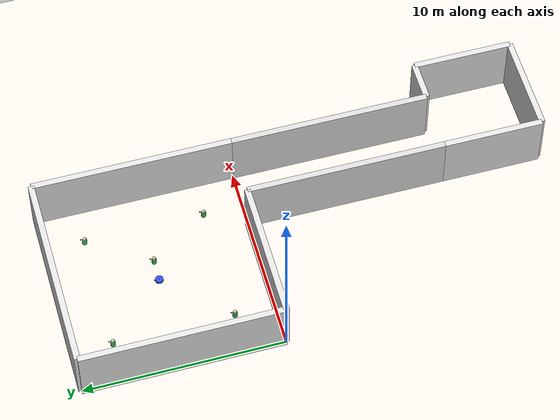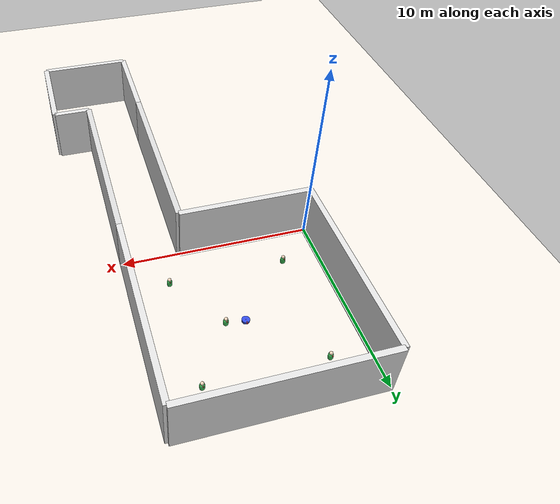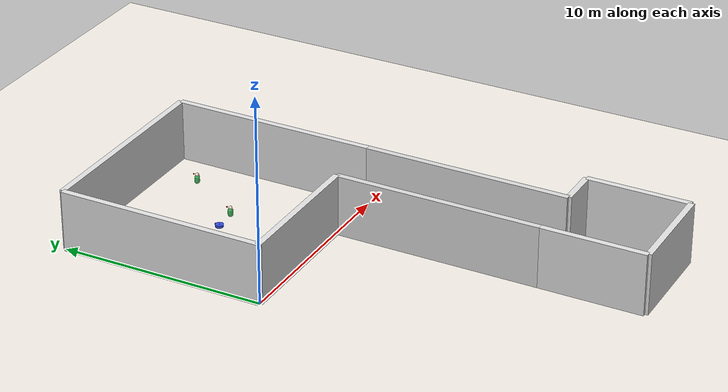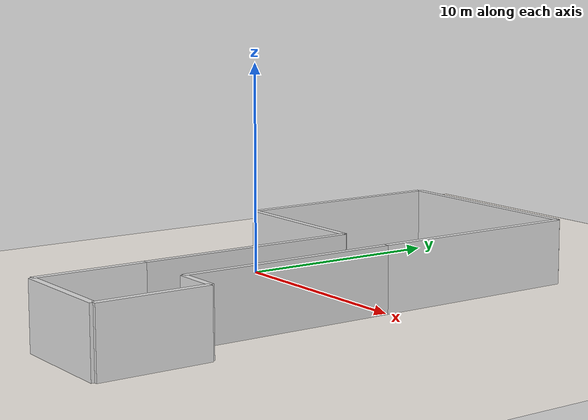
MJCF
<mujoco model="museum_shell">
  <compiler angle="degree" coordinate="local"/>
  <option timestep="0.002" gravity="0 0 -9.81"/>

  <default>
    <!-- Collision defaults (good stable starting point) -->
    <geom contype="1" conaffinity="1" friction="1 0.005 0.0001"
          solref="0.02 1" solimp="0.9 0.95 0.001"/>
  </default>

  <worldbody>
    <!-- A camera so you immediately see something -->
    <camera name="cam_overview" pos="6 -22 10" xyaxes="1 0 0 0 0.55 0.83"/>

    <!-- ============ FLOOR ============ -->
    <!-- size = half-size. This plane is effectively infinite visually;
         size mainly affects texture scaling; keep it large. -->
    <geom name="floor" type="plane" pos="0 0 0" size="30 30 0.1" rgba="0.95 0.93 0.9 1"/>

    <!-- ============ CORRIDOR ============ -->
    <!-- CORRIDOR: inner x[7,10], y[-10,0] (width 3m, length 10m) -->
    <!-- Left corridor wall at x=7 -->

    <!-- Left wall of corridor -->
    <geom name="corridor_wall_left" type="box"
          pos="7 -5 1.5" size="0.15 5 1.5" rgba="0.85 0.85 0.85 1"/>

    <!-- Right corridor wall at x=10 -->
    <geom name="corridor_wall_right" type="box"
          pos="10 -5 1.5" size="0.15 5 1.5" rgba="0.85 0.85 0.85 1"/>

    <!-- ROOM A (10x10): x[0,10], y[0,10] -->
    <!-- Top wall y=10 -->
    <geom name="roomA_wall_top" type="box"
          pos="5 10 1.5" size="5 0.15 1.5" rgba="0.88 0.88 0.88 1"/>

    <!-- Left wall x=0 -->
    <geom name="roomA_wall_left" type="box"
          pos="0 5 1.5" size="0.15 5 1.5" rgba="0.88 0.88 0.88 1"/>

    <!-- Right wall x=10 -->
    <geom name="roomA_wall_right" type="box"
          pos="10 5 1.5" size="0.15 5 1.5" rgba="0.88 0.88 0.88 1"/>

    <!-- Bottom wall y=0, leave a 3m opening at the RIGHT side: x in [7,10] -->
    <geom name="roomA_wall_bottom_left" type="box"
          pos="3.5 0 1.5" size="3.5 0.15 1.5" rgba="0.88 0.88 0.88 1"/>

    <!-- ROOM B: x[7,12], y[-15,-10] (5x5) -->
    <!-- Left wall x=7 -->
    <geom name="roomB_wall_left" type="box"
          pos="7 -12.5 1.5" size="0.15 2.5 1.5" rgba="0.88 0.88 0.88 1"/>

    <!-- Right wall x=12 -->
    <geom name="roomB_wall_right" type="box"
          pos="12 -12.5 1.5" size="0.15 2.5 1.5" rgba="0.88 0.88 0.88 1"/>

    <!-- Bottom wall y=-15 -->
    <geom name="roomB_wall_bottom" type="box"
          pos="9.5 -15 1.5" size="2.5 0.15 1.5" rgba="0.88 0.88 0.88 1"/>

    <!-- Top wall y=-10, leave a 3m opening at the LEFT side: x in [7,10] to connect corridor -->
    <geom name="roomB_wall_top_right" type="box"
          pos="11 -10 1.5" size="1 0.15 1.5" rgba="0.88 0.88 0.88 1"/>

    <!-- ============ DISPLAY CASES ============ -->
    <!-- Cases: 0.6x0.6 and 0.6x1.2 (meters). We'll make them 0.9m tall. -->
    <!-- Box size is half-size: (0.3, 0.3, 0.45) for 0.6x0.6x0.9 -->
    <!-- and (0.3, 0.6, 0.45) for 0.6x1.2x0.9 -->

    <!-- ============ ROBOT (triangle-ish base, planar joints) ============ -->
    <body name="robot" pos="5 5 0.06">
      <!-- Planar movement: x, y, yaw -->
      <joint name="robot_x" type="slide" axis="1 0 0" damping="2"/>
      <joint name="robot_y" type="slide" axis="0 1 0" damping="2"/>
      <joint name="robot_yaw" type="hinge" axis="0 0 1" damping="1"/>

      <!-- Main footprint: use a cylinder for stable collision (fast + robust).
           Radius ~0.20m (40cm diameter). Height 0.12m. -->
      <geom name="robot_base" type="cylinder" size="0.20 0.06"
            rgba="0.2 0.3 0.9 1"/>

      <!-- Nose: small box in front to show orientation (front/back) -->
      <geom name="robot_nose" type="box" pos="0 0.18 0.03" size="0.03 0.06 0.03"
            rgba="0.95 0.25 0.25 1" contype="0" conaffinity="0"/>

      <!-- Optional: a site for easy tracking (goal distances, etc.) -->
      <site name="robot_site" pos="0 0 0.06" size="0.02" rgba="1 0 0 1"/>
    </body>

    <!-- ============ PERSON (oval torso + head + nose, planar joints) ============ -->
    <body name="person1" pos="6 5 0.125">
      <!-- Planar movement: x, y, yaw -->
      <joint name="person1_x" type="slide" axis="1 0 0" damping="3"/>
      <joint name="person1_y" type="slide" axis="0 1 0" damping="3"/>
      <joint name="person1_yaw" type="hinge" axis="0 0 1" damping="2"/>

      <geom name="person1_torso" type="capsule"
            pos="0 0 0.125" size="0.125 0.10"
            euler="0 0 90" rgba="0.25 0.75 0.35 1"/>

      <!-- Head -->
      <geom name="person1_head" type="sphere"
            pos="0 0 0.36" size="0.09"
            rgba="0.95 0.85 0.75 1" contype="0" conaffinity="0"/>

      <!-- Nose: small marker to show front direction (person faces +y in its local frame) -->
      <geom name="person1_nose" type="box"
            pos="0 0.18 0.36" size="0.02 0.03 0.02"
            rgba="0.95 0.35 0.35 1" contype="0" conaffinity="0"/>

      <!-- Tracking site -->
      <site name="person1_site" pos="0 0 0.125" size="0.02" rgba="0 1 0 1"/>
    </body>

    <!-- More people -->
    <body name="person2" pos="2.0 2.0 0.125">
      <joint name="person2_x" type="slide" axis="1 0 0" damping="3"/>
      <joint name="person2_y" type="slide" axis="0 1 0" damping="3"/>
      <joint name="person2_yaw" type="hinge" axis="0 0 1" damping="2"/>
      <geom name="person2_torso" type="capsule" pos="0 0 0.125" size="0.125 0.10" euler="0 0 90" rgba="0.20 0.70 0.30 1"/>
      <geom name="person2_head"  type="sphere"  pos="0 0 0.36"  size="0.09" rgba="0.95 0.85 0.75 1" contype="0" conaffinity="0"/>
      <geom name="person2_nose"  type="box"     pos="0 0.18 0.36" size="0.02 0.03 0.02" rgba="0.95 0.35 0.35 1" contype="0" conaffinity="0"/>
      <site name="person2_site" pos="0 0 0.125" size="0.02" rgba="0 1 0 1"/>
    </body>

    <body name="person3" pos="8.0 2.0 0.125">
      <joint name="person3_x" type="slide" axis="1 0 0" damping="3"/>
      <joint name="person3_y" type="slide" axis="0 1 0" damping="3"/>
      <joint name="person3_yaw" type="hinge" axis="0 0 1" damping="2"/>
      <geom name="person3_torso" type="capsule" pos="0 0 0.125" size="0.125 0.10" euler="0 0 90" rgba="0.22 0.72 0.33 1"/>
      <geom name="person3_head"  type="sphere"  pos="0 0 0.36"  size="0.09" rgba="0.95 0.85 0.75 1" contype="0" conaffinity="0"/>
      <geom name="person3_nose"  type="box"     pos="0 0.18 0.36" size="0.02 0.03 0.02" rgba="0.95 0.35 0.35 1" contype="0" conaffinity="0"/>
      <site name="person3_site" pos="0 0 0.125" size="0.02" rgba="0 1 0 1"/>
    </body>

    <body name="person4" pos="2.0 8.0 0.125">
      <joint name="person4_x" type="slide" axis="1 0 0" damping="3"/>
      <joint name="person4_y" type="slide" axis="0 1 0" damping="3"/>
      <joint name="person4_yaw" type="hinge" axis="0 0 1" damping="2"/>
      <geom name="person4_torso" type="capsule" pos="0 0 0.125" size="0.125 0.10" euler="0 0 90" rgba="0.24 0.74 0.35 1"/>
      <geom name="person4_head"  type="sphere"  pos="0 0 0.36"  size="0.09" rgba="0.95 0.85 0.75 1" contype="0" conaffinity="0"/>
      <geom name="person4_nose"  type="box"     pos="0 0.18 0.36" size="0.02 0.03 0.02" rgba="0.95 0.35 0.35 1" contype="0" conaffinity="0"/>
      <site name="person4_site" pos="0 0 0.125" size="0.02" rgba="0 1 0 1"/>
    </body>

    <body name="person5" pos="8.0 8.0 0.125">
      <joint name="person5_x" type="slide" axis="1 0 0" damping="3"/>
      <joint name="person5_y" type="slide" axis="0 1 0" damping="3"/>
      <joint name="person5_yaw" type="hinge" axis="0 0 1" damping="2"/>
      <geom name="person5_torso" type="capsule" pos="0 0 0.125" size="0.125 0.10" euler="0 0 90" rgba="0.26 0.76 0.37 1"/>
      <geom name="person5_head"  type="sphere"  pos="0 0 0.36"  size="0.09" rgba="0.95 0.85 0.75 1" contype="0" conaffinity="0"/>
      <geom name="person5_nose"  type="box"     pos="0 0.18 0.36" size="0.02 0.03 0.02" rgba="0.95 0.35 0.35 1" contype="0" conaffinity="0"/>
      <site name="person5_site" pos="0 0 0.125" size="0.02" rgba="0 1 0 1"/>
    </body>

  </worldbody>

  <actuator>
    <!-- Control x/y slides and yaw hinge.
         For RL, action = [vx_cmd, vy_cmd, yawrate_cmd] is possible.
         But for (v, w) you usually set vy_cmd=0 in your policy. -->
    <motor name="motor_x" joint="robot_x" ctrlrange="-1.5 1.5" gear="1"/>
    <motor name="motor_y" joint="robot_y" ctrlrange="-1.5 1.5" gear="1"/>
    <motor name="motor_yaw" joint="robot_yaw" ctrlrange="-2.0 2.0" gear="1"/>

    <!-- Person controls (same style as robot) -->
    <motor name="person1_motor_x" joint="person1_x" ctrlrange="-1.2 1.2" gear="1"/>
    <motor name="person1_motor_y" joint="person1_y" ctrlrange="-1.2 1.2" gear="1"/>
    <motor name="person1_motor_yaw" joint="person1_yaw" ctrlrange="-2.0 2.0" gear="1"/>

    <!-- Person2 controls -->
    <motor name="person2_motor_x" joint="person2_x" ctrlrange="-1.2 1.2" gear="1"/>
    <motor name="person2_motor_y" joint="person2_y" ctrlrange="-1.2 1.2" gear="1"/>
    <motor name="person2_motor_yaw" joint="person2_yaw" ctrlrange="-2.0 2.0" gear="1"/>

    <!-- Person3 controls -->
    <motor name="person3_motor_x" joint="person3_x" ctrlrange="-1.2 1.2" gear="1"/>
    <motor name="person3_motor_y" joint="person3_y" ctrlrange="-1.2 1.2" gear="1"/>
    <motor name="person3_motor_yaw" joint="person3_yaw" ctrlrange="-2.0 2.0" gear="1"/>

    <!-- Person4 controls -->
    <motor name="person4_motor_x" joint="person4_x" ctrlrange="-1.2 1.2" gear="1"/>
    <motor name="person4_motor_y" joint="person4_y" ctrlrange="-1.2 1.2" gear="1"/>
    <motor name="person4_motor_yaw" joint="person4_yaw" ctrlrange="-2.0 2.0" gear="1"/>

    <!-- Person5 controls -->
    <motor name="person5_motor_x" joint="person5_x" ctrlrange="-1.2 1.2" gear="1"/>
    <motor name="person5_motor_y" joint="person5_y" ctrlrange="-1.2 1.2" gear="1"/>
    <motor name="person5_motor_yaw" joint="person5_yaw" ctrlrange="-2.0 2.0" gear="1"/>

  </actuator>

</mujoco>
